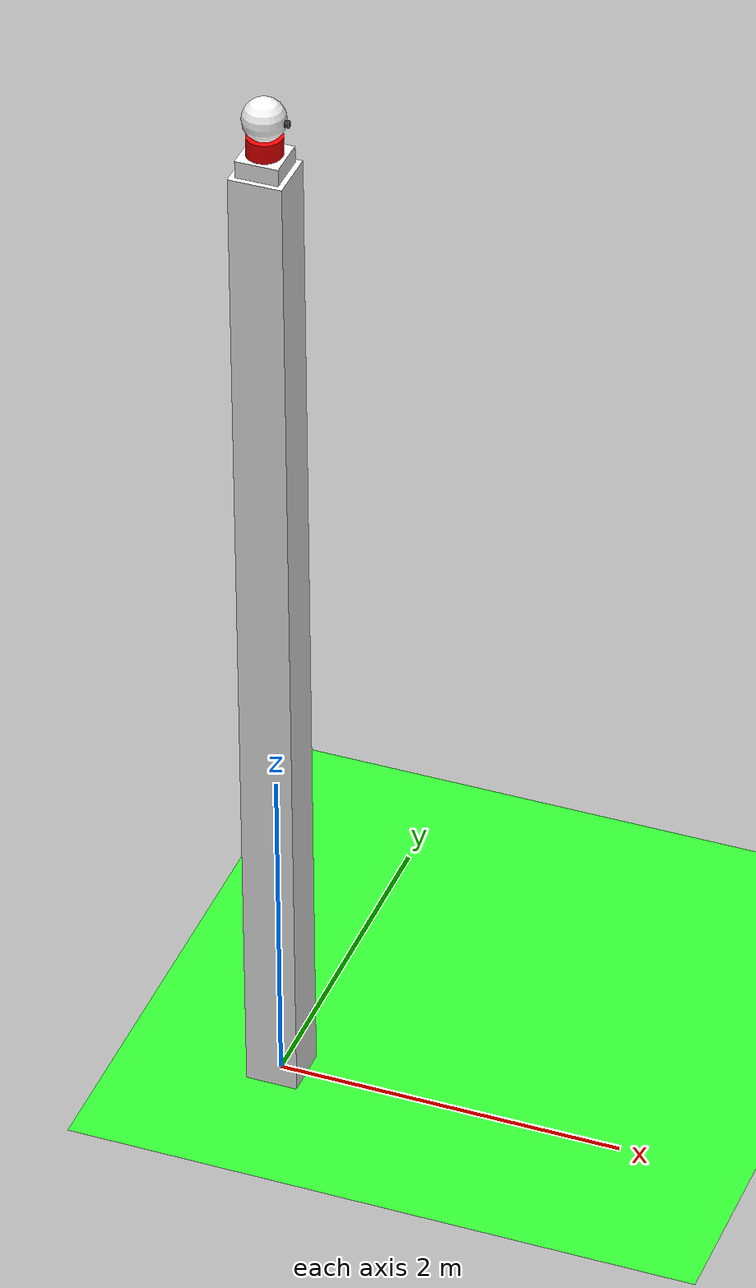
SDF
<?xml version="1.0" encoding="UTF-8"?>
<sdf version="1.9">
  <world name="anti_uav">
    <physics type="ode">
      <max_step_size>0.001</max_step_size>
      <real_time_factor>1.0</real_time_factor>
      <real_time_update_rate>250</real_time_update_rate>
    </physics>
    <plugin name="gz::sim::systems::Physics" filename="gz-sim-physics-system"/>
    <plugin name="gz::sim::systems::UserCommands" filename="gz-sim-user-commands-system"/>
    <plugin name="gz::sim::systems::SceneBroadcaster" filename="gz-sim-scene-broadcaster-system"/>
    <plugin name="gz::sim::systems::Contact" filename="gz-sim-contact-system"/>
    <plugin name="gz::sim::systems::Imu" filename="gz-sim-imu-system"/>
    <plugin name="gz::sim::systems::AirPressure" filename="gz-sim-air-pressure-system"/>
    <plugin name="gz::sim::systems::AirSpeed" filename="gz-sim-air-speed-system"/>
    <plugin name="gz::sim::systems::ApplyLinkWrench" filename="gz-sim-apply-link-wrench-system"/>
    <plugin name="gz::sim::systems::NavSat" filename="gz-sim-navsat-system"/>
    <plugin name="gz::sim::systems::Sensors" filename="gz-sim-sensors-system">
      <render_engine>ogre2</render_engine>
    </plugin>
    <gui fullscreen="false">
      <!-- 3D scene -->
      <plugin filename="MinimalScene" name="3D View">
        <gz-gui>
          <title>3D View</title>
          <property type="bool" key="showTitleBar">false</property>
          <property type="string" key="state">docked</property>
        </gz-gui>
        <engine>ogre2</engine>
        <scene>scene</scene>
        <ambient_light>0.4 0.4 0.4</ambient_light>
        <background_color>0.8 0.8 0.8</background_color>
        <camera_pose>-6 0 6 0 0.5 0</camera_pose>
        <camera_clip>
          <near>0.25</near>
          <far>25000</far>
        </camera_clip>
      </plugin>
      <!-- Plugins that add functionality to the scene -->
      <plugin filename="EntityContextMenuPlugin" name="Entity context menu">
        <gz-gui>
          <property key="state" type="string">floating</property>
          <property key="width" type="double">5</property>
          <property key="height" type="double">5</property>
          <property key="showTitleBar" type="bool">false</property>
        </gz-gui>
      </plugin>
      <plugin filename="GzSceneManager" name="Scene Manager">
        <gz-gui>
          <property key="resizable" type="bool">false</property>
          <property key="width" type="double">5</property>
          <property key="height" type="double">5</property>
          <property key="state" type="string">floating</property>
          <property key="showTitleBar" type="bool">false</property>
        </gz-gui>
      </plugin>
      <plugin filename="InteractiveViewControl" name="Interactive view control">
        <gz-gui>
          <property key="resizable" type="bool">false</property>
          <property key="width" type="double">5</property>
          <property key="height" type="double">5</property>
          <property key="state" type="string">floating</property>
          <property key="showTitleBar" type="bool">false</property>
        </gz-gui>
      </plugin>
      <plugin filename="CameraTracking" name="Camera Tracking">
        <gz-gui>
          <property key="resizable" type="bool">false</property>
          <property key="width" type="double">5</property>
          <property key="height" type="double">5</property>
          <property key="state" type="string">floating</property>
          <property key="showTitleBar" type="bool">false</property>
        </gz-gui>
      </plugin>
      <plugin filename="MarkerManager" name="Marker manager">
        <gz-gui>
          <property key="resizable" type="bool">false</property>
          <property key="width" type="double">5</property>
          <property key="height" type="double">5</property>
          <property key="state" type="string">floating</property>
          <property key="showTitleBar" type="bool">false</property>
        </gz-gui>
      </plugin>
      <plugin filename="SelectEntities" name="Select Entities">
        <gz-gui>
          <anchors target="Select entities">
            <line own="right" target="right"/>
            <line own="top" target="top"/>
          </anchors>
          <property key="resizable" type="bool">false</property>
          <property key="width" type="double">5</property>
          <property key="height" type="double">5</property>
          <property key="state" type="string">floating</property>
          <property key="showTitleBar" type="bool">false</property>
        </gz-gui>
      </plugin>
      <plugin filename="VisualizationCapabilities" name="Visualization Capabilities">
        <gz-gui>
          <property key="resizable" type="bool">false</property>
          <property key="width" type="double">5</property>
          <property key="height" type="double">5</property>
          <property key="state" type="string">floating</property>
          <property key="showTitleBar" type="bool">false</property>
        </gz-gui>
      </plugin>
      <plugin filename="Spawn" name="Spawn Entities">
        <gz-gui>
          <anchors target="Select entities">
            <line own="right" target="right"/>
            <line own="top" target="top"/>
          </anchors>
          <property key="resizable" type="bool">false</property>
          <property key="width" type="double">5</property>
          <property key="height" type="double">5</property>
          <property key="state" type="string">floating</property>
          <property key="showTitleBar" type="bool">false</property>
        </gz-gui>
      </plugin>
      <plugin name="World control" filename="WorldControl">
        <gz-gui>
          <title>World control</title>
          <property type="bool" key="showTitleBar">0</property>
          <property type="bool" key="resizable">0</property>
          <property type="double" key="height">72</property>
          <property type="double" key="width">121</property>
          <property type="double" key="z">1</property>
          <property type="string" key="state">floating</property>
          <anchors target="3D View">
            <line own="left" target="left"/>
            <line own="bottom" target="bottom"/>
          </anchors>
        </gz-gui>
        <play_pause>1</play_pause>
        <step>1</step>
        <start_paused>1</start_paused>
      </plugin>
      <plugin name="World stats" filename="WorldStats">
        <gz-gui>
          <title>World stats</title>
          <property type="bool" key="showTitleBar">0</property>
          <property type="bool" key="resizable">0</property>
          <property type="double" key="height">110</property>
          <property type="double" key="width">290</property>
          <property type="double" key="z">1</property>
          <property type="string" key="state">floating</property>
          <anchors target="3D View">
            <line own="right" target="right"/>
            <line own="bottom" target="bottom"/>
          </anchors>
        </gz-gui>
        <sim_time>1</sim_time>
        <real_time>1</real_time>
        <real_time_factor>1</real_time_factor>
        <iterations>1</iterations>
      </plugin>
      <plugin name="Entity tree" filename="EntityTree"/>
    </gui>
    <gravity>0 0 -9.8</gravity>
    <magnetic_field>6e-06 2.3e-05 -4.2e-05</magnetic_field>
    <atmosphere type="adiabatic"/>
    <scene>
      <grid>false</grid>
      <ambient>0.4 0.4 0.4 1</ambient>
      <background>0.7 0.7 0.7 1</background>
      <shadows>true</shadows>
    </scene>
    <model name="ground_plane">
      <static>true</static>
      <link name="link">
        <collision name="collision">
          <geometry>
            <plane>
              <normal>0 0 1</normal>
              <size>100000 100000</size>
            </plane>
          </geometry>
          <surface>
            <friction>
              <ode/>
            </friction>
            <bounce/>
            <contact/>
          </surface>
        </collision>
        <visual name="visual">
          <geometry>
            <plane>
              <normal>0 0 1</normal>
              <size>100000 100000</size>
            </plane>
          </geometry>
          <material>
            <ambient>0.2 1 0.2 1</ambient>
            <diffuse>0.2 1 0.2 1</diffuse>
            <specular>0.1 0.1 0.1 1</specular>
          </material>
        </visual>
        <pose>0 0 0 0 -0 0</pose>
        <inertial>
          <pose>0 0 0 0 -0 0</pose>
          <mass>1</mass>
          <inertia>
            <ixx>1</ixx>
            <ixy>0</ixy>
            <ixz>0</ixz>
            <iyy>1</iyy>
            <iyz>0</iyz>
            <izz>1</izz>
          </inertia>
        </inertial>
        <enable_wind>false</enable_wind>
      </link>
      <pose>0 0 0 0 -0 0</pose>
      <self_collide>false</self_collide>
    </model>
    <light name="sunUTC" type="directional">
      <pose>0 0 500 0 -0 0</pose>
      <cast_shadows>true</cast_shadows>
      <intensity>1</intensity>
      <direction>0.001 0.625 -0.78</direction>
      <diffuse>0.904 0.904 0.904 1</diffuse>
      <specular>0.271 0.271 0.271 1</specular>
      <attenuation>
        <range>2000</range>
        <linear>0</linear>
        <constant>1</constant>
        <quadratic>0</quadratic>
      </attenuation>
      <spot>
        <inner_angle>0</inner_angle>
        <outer_angle>0</outer_angle>
        <falloff>0</falloff>
      </spot>
    </light>
    <spherical_coordinates>
      <surface_model>EARTH_WGS84</surface_model>
      <world_frame_orientation>ENU</world_frame_orientation>
      <latitude_deg>47.397971057728974</latitude_deg>
      <longitude_deg> 8.546163739800146</longitude_deg>
      <elevation>0</elevation>
    </spherical_coordinates>

    <model name="ptz_on_bracket">
      <link name="bracket_link">
        <pose>0 0 3 0 0 0</pose>
        <visual name="bracket_visual">
          <geometry>
            <box>
              <size>0.3 0.3 6</size>
            </box>
          </geometry>
          <material>
            <ambient>1 1 1 1</ambient>
            <diffuse>1 1 1 1</diffuse>
            <specular>0.5 0.5 0.5 1</specular>
          </material>
        </visual>
        <collision name="base_collision">
          <geometry>
            <box>
              <size>0.5 0.5 6</size>
            </box>
          </geometry>
        </collision>
      </link>

      <joint name="bracket_fixed_joint" type="fixed">
        <parent>world</parent>
        <child>bracket_link</child>
      </joint>

      <include merge="true">
        <uri>model://ptz_cam</uri>
        <pose>0 0 6 0 0 0</pose>
      </include>

      <joint name="ptz_fixed_joint" type="fixed">
        <parent>bracket_link</parent>
        <child>ptz_base_link</child>
        <pose>0 0 3 0 0 0</pose>
      </joint>
    </model>

  </world>
</sdf>

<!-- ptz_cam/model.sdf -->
<sdf version="1.10">
  <model name="ptz_cam">
    <self_collide>false</self_collide>
    <static>false</static>

    <link name="ptz_base_link">
      <pose>0 0 0.05 0 0 0</pose>
      <inertial>
        <mass>1.0</mass>
        <inertia>
          <ixx>0.00563</ixx>
          <ixy>0</ixy>
          <ixz>0</ixz>
          <iyy>0.00563</iyy>
          <iyz>0</iyz>
          <izz>0.0096</izz>
        </inertia>
      </inertial>
      <visual name="base_visual">
        <geometry>
          <box>
            <size>0.24 0.24 0.1</size>
          </box>
        </geometry>
        <material>
          <ambient>1 1 1 1</ambient>
          <diffuse>1 1 1 1</diffuse>
          <specular>0.5 0.5 0.5 1</specular>
        </material>
      </visual>
      <collision name="base_collision">
        <geometry>
          <box>
            <size>0.24 0.24 0.1</size>
          </box>
        </geometry>
      </collision>
    </link>

    <link name="ptz_yaw_link">
      <pose>0 0 0.13 0 0 0</pose>
      <inertial>
        <mass>0.3</mass>
        <inertia>
          <ixx>0.00139</ixx>
          <ixy>0</ixy>
          <ixz>0</ixz>
          <iyy>0.00139</iyy>
          <iyz>0</iyz>
          <izz>0.0015</izz>
        </inertia>
      </inertial>
      <visual name="yaw_visual">
        <geometry>
          <cylinder>
            <radius>0.1</radius>
            <length>0.16</length>
          </cylinder>
        </geometry>
        <material>
          <ambient>1 0 0 1</ambient>
          <diffuse>1 0 0 1</diffuse>
          <specular>0.5 0.5 0.5 1</specular>
        </material>
      </visual>
      <collision name="yaw_collision">
        <geometry>
          <cylinder>
            <radius>0.1</radius>
            <length>0.16</length>
          </cylinder>
        </geometry>
      </collision>
    </link>

    <joint name="ptz_yaw_joint" type="revolute">
      <parent>ptz_base_link</parent>
      <child>ptz_yaw_link</child>
      <axis>
        <xyz>0 0 1</xyz>
        <limit>
          <lower>-1e16</lower>
          <upper>1e16</upper>
          <effort>50</effort>
          <velocity>-1</velocity>
        </limit>
        <dynamics>
          <damping>0.05</damping>
        </dynamics>
      </axis>
      <physics>
        <ode>
          <implicit_spring_damper>1</implicit_spring_damper>
          <limit>
            <cfm>0.1</cfm>
            <erp>0.2</erp>
          </limit>
        </ode>
      </physics>
    </joint>

    <link name="ptz_pitch_link">
      <pose>0 0 0.31 0 0 0</pose>
      <inertial>
        <mass>0.5</mass>
        <inertia>
          <ixx>0.00288</ixx>
          <ixy>0</ixy>
          <ixz>0</ixz>
          <iyy>0.00288</iyy>
          <iyz>0</iyz>
          <izz>0.00288</izz>
        </inertia>
      </inertial>
      <visual name="pitch_visual">
        <geometry>
          <sphere>
            <radius>0.12</radius>
          </sphere>
        </geometry>
        <material>
          <ambient>1 1 1 1</ambient>
          <diffuse>1 1 1 1</diffuse>
          <specular>0.5 0.5 0.5 1</specular>
        </material>
      </visual>
      <collision name="pitch_collision">
        <geometry>
          <sphere>
            <radius>0.12</radius>
          </sphere>
        </geometry>
      </collision>
    </link>

    <joint name="ptz_pitch_joint" type="revolute">
      <parent>ptz_yaw_link</parent>
      <child>ptz_pitch_link</child>
      <axis>
        <xyz>0 1 0</xyz>
        <limit>
          <lower>-1.5708</lower>
          <upper>0.436332</upper>
          <effort>50</effort>
          <velocity>1.0</velocity>
        </limit>
        <dynamics>
          <damping>0.1</damping>
        </dynamics>
      </axis>
      <physics>
        <ode>
          <implicit_spring_damper>1</implicit_spring_damper>
          <limit>
            <cfm>0.1</cfm>
            <erp>0.2</erp>
          </limit>
        </ode>
      </physics>
    </joint>

    <link name="ptz_camera_link">
      <pose>0.12 0 0.31 0 1.5708 0</pose>
      <inertial>
        <mass>0.01</mass>
        <inertia>
          <ixx>2.3333e-06</ixx>
          <ixy>0</ixy>
          <ixz>0</ixz>
          <iyy>2.3333e-06</iyy>
          <iyz>0</iyz>
          <izz>2.0e-06</izz>
        </inertia>
      </inertial>
      <visual name="camera_visual">
        <geometry>
          <cylinder>
            <radius>0.02</radius>
            <length>0.04</length>
          </cylinder>
        </geometry>
        <material>
          <ambient>0.2 0.2 0.2 1</ambient>
          <diffuse>0.2 0.2 0.2 1</diffuse>
          <specular>0.5 0.5 0.5 1</specular>
        </material>
      </visual>
      <collision name="mount_collision">
        <geometry>
          <cylinder>
            <radius>0.02</radius>
            <length>0.04</length>
          </cylinder>
        </geometry>
      </collision>

      <sensor name="camera_imu" type="imu">
        <always_on>1</always_on>
        <update_rate>250</update_rate>
        <pose>0.12 0 0.31 0 1.5708 0</pose>
        <imu>
          <angular_velocity>
            <x>
              <noise type="gaussian">
                <mean>0</mean>
                <stddev>0.00018665</stddev>
                <dynamic_bias_stddev>3.8785e-05</dynamic_bias_stddev>
                <dynamic_bias_correlation_time>1000</dynamic_bias_correlation_time>
              </noise>
            </x>
            <y>
              <noise type="gaussian">
                <mean>0</mean>
                <stddev>0.00018665</stddev>
                <dynamic_bias_stddev>3.8785e-05</dynamic_bias_stddev>
                <dynamic_bias_correlation_time>1000</dynamic_bias_correlation_time>
              </noise>
            </y>
            <z>
              <noise type="gaussian">
                <mean>0</mean>
                <stddev>0.00018665</stddev>
                <dynamic_bias_stddev>3.8785e-05</dynamic_bias_stddev>
                <dynamic_bias_correlation_time>1000</dynamic_bias_correlation_time>
              </noise>
            </z>
          </angular_velocity>
          <linear_acceleration>
            <x>
              <noise type="gaussian">
                <mean>0</mean>
                <stddev>0.00186</stddev>
                <dynamic_bias_stddev>0.006</dynamic_bias_stddev>
                <dynamic_bias_correlation_time>300</dynamic_bias_correlation_time>
              </noise>
            </x>
            <y>
              <noise type="gaussian">
                <mean>0</mean>
                <stddev>0.00186</stddev>
                <dynamic_bias_stddev>0.006</dynamic_bias_stddev>
                <dynamic_bias_correlation_time>300</dynamic_bias_correlation_time>
              </noise>
            </y>
            <z>
              <noise type="gaussian">
                <mean>0</mean>
                <stddev>0.00186</stddev>
                <dynamic_bias_stddev>0.006</dynamic_bias_stddev>
                <dynamic_bias_correlation_time>300</dynamic_bias_correlation_time>
              </noise>
            </z>
          </linear_acceleration>
        </imu>
        <topic>ptz_cam/camera_imu</topic>
      </sensor>

      <sensor name="camera" type="camera">
        <pose>0.14 0 0.31 0 -1.5708 0</pose>
        <camera>
          <horizontal_fov>1.74</horizontal_fov>
          <image>
            <width>1280</width>
            <height>720</height>
            <format>R8G8B8</format>
          </image>
          <clip>
            <near>0.1</near>
            <far>1000</far>
          </clip>
        </camera>
        <always_on>1</always_on>
        <update_rate>30</update_rate>
        <visualize>true</visualize>
        <topic>ptz_cam/camera</topic>
      </sensor>
    </link>

    <joint name="mount_joint" type="fixed">
      <parent>ptz_pitch_link</parent>
      <child>ptz_camera_link</child>
    </joint>

     <!-- Plugins for joint control -->
    <plugin filename="gz-sim-joint-position-controller-system"
            name="gz::sim::systems::JointPositionController">
      <joint_name>ptz_yaw_joint</joint_name>
      <sub_topic>command/ptz_yaw</sub_topic>
      <p_gain>0.3</p_gain>
      <i_gain>0.012</i_gain>
      <d_gain>0.015</d_gain>
      <i_max>0</i_max>
      <i_min>0</i_min>
      <cmd_max>0.3</cmd_max>
      <cmd_min>-0.3</cmd_min>
    </plugin>

    <plugin filename="gz-sim-joint-position-controller-system"
            name="gz::sim::systems::JointPositionController">
      <joint_name>ptz_pitch_joint</joint_name>
      <sub_topic>command/ptz_pitch</sub_topic>
      <p_gain>0.8</p_gain>
      <i_gain>0.012</i_gain>
      <d_gain>0.015</d_gain>
      <i_max>0</i_max>
      <i_min>0</i_min>
      <cmd_max>1</cmd_max>
      <cmd_min>-1</cmd_min>
    </plugin>

  </model>
</sdf>
